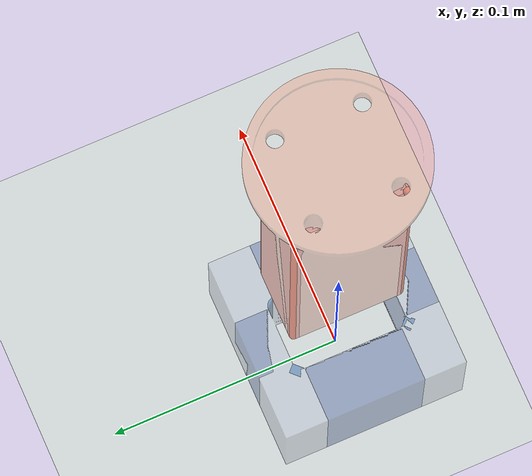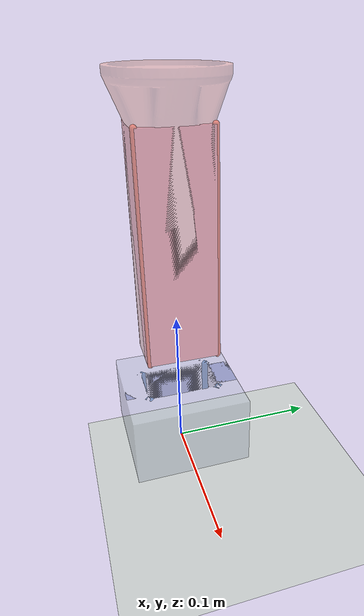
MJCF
<mujoco model="rect_peg_in_hole_mesh_proxy_rounded_peg_soft">

  <compiler angle="radian"
            meshdir="../urdf/meshes"/>

  <option timestep="0.005"
          solver="Newton"
          iterations="10"
          ls_iterations="50"
          gravity="0 0 0"
          cone="pyramidal"/>

  <custom>
    <numeric data="72" name="max_contact_points"/>
    <numeric data="72" name="max_geom_pairs"/>
  </custom>

  <visual>
    <global offwidth="1280" offheight="900"/>
    <headlight ambient="0.35 0.35 0.35" diffuse="0.65 0.65 0.65" specular="0.1 0.1 0.1"/>
  </visual>

  <asset>
    <mesh name="rectangular_peg_mesh" file="rectangular_peg.obj"/>
    <mesh name="rectangular_hole_mesh" file="rectangular_hole.obj"/>

    <texture name="checker" type="2d" builtin="checker"
             width="512" height="512"
             rgb1="0.92 0.92 0.88" rgb2="0.68 0.72 0.76"/>
    <material name="checker_mat" texture="checker" texrepeat="10 10" reflectance="0.15"/>
  </asset>

  <default>
    <geom condim="3"
          friction="1.0 0.005 0.0001"
          solref="0.03 1"
          solimp="0 0.9 0.01 0.5 2"/>
  </default>

  <worldbody>
    <light name="key_light" pos="0.35 -0.55 1.0" dir="-0.35 0.55 -1"/>
    <geom name="floor"
          type="plane"
          pos="0 0 -0.026"
          size="0.5 0.5 0.01"
          contype="0"
          conaffinity="0"
          material="checker_mat"/>

    <geom name="hole_visual"
          type="mesh"
          mesh="rectangular_hole_mesh"
          pos="0 0 0"
          contype="0"
          conaffinity="0"
          rgba="0.68 0.73 0.82 0.35"/>

    <geom name="hole_proxy_pos_x_collision"
          type="box"
          pos="0.0281 0 0.025"
          size="0.0119 0.0215 0.025"
          contype="1"
          conaffinity="1"
          rgba="0.14 0.25 0.55 0.35"/>
    <geom name="hole_proxy_neg_x_collision"
          type="box"
          pos="-0.0281 0 0.025"
          size="0.0119 0.0215 0.025"
          contype="1"
          conaffinity="1"
          rgba="0.14 0.25 0.55 0.35"/>
    <geom name="hole_proxy_pos_y_collision"
          type="box"
          pos="0 0.0326 0.025"
          size="0.0125 0.0074 0.025"
          contype="1"
          conaffinity="1"
          rgba="0.14 0.25 0.55 0.35"/>
    <geom name="hole_proxy_neg_y_collision"
          type="box"
          pos="0 -0.0326 0.025"
          size="0.0125 0.0074 0.025"
          contype="1"
          conaffinity="1"
          rgba="0.14 0.25 0.55 0.35"/>

    <geom name="hole_proxy_chamfer_pos_x_pos_y_collision"
          type="box"
          pos="0.015764 0.024764 0.025"
          euler="0 0 -0.7853981633974483"
          size="0.002616 0.002 0.025"
          contype="1"
          conaffinity="1"
          rgba="0.10 0.35 0.65 0.45"/>
    <geom name="hole_proxy_chamfer_neg_x_pos_y_collision"
          type="box"
          pos="-0.015764 0.024764 0.025"
          euler="0 0 0.7853981633974483"
          size="0.002616 0.002 0.025"
          contype="1"
          conaffinity="1"
          rgba="0.10 0.35 0.65 0.45"/>
    <geom name="hole_proxy_chamfer_pos_x_neg_y_collision"
          type="box"
          pos="0.015764 -0.024764 0.025"
          euler="0 0 -2.356194490192345"
          size="0.002616 0.002 0.025"
          contype="1"
          conaffinity="1"
          rgba="0.10 0.35 0.65 0.45"/>
    <geom name="hole_proxy_chamfer_neg_x_neg_y_collision"
          type="box"
          pos="-0.015764 -0.024764 0.025"
          euler="0 0 2.356194490192345"
          size="0.002616 0.002 0.025"
          contype="1"
          conaffinity="1"
          rgba="0.10 0.35 0.65 0.45"/>

    <body name="peg" pos="0.006 0 0.23" euler="0 0 1.5707963267948966">
      <joint name="insertion_slide" type="slide" axis="0 0 1"/>

      <geom name="peg_visual"
            type="mesh"
            mesh="rectangular_peg_mesh"
            euler="1.5707963267948966 0 0"
            density="0"
            contype="0"
            conaffinity="0"
            rgba="0.95 0.58 0.44 0.35"/>

      <geom name="peg_proxy_core_x_collision"
            type="box"
            pos="0 0 -0.075"
            size="0.023 0.016 0.075"
            mass="0.49468"
            contype="1"
            conaffinity="1"
            rgba="0.85 0.18 0.12 0.35"/>
      <geom name="peg_proxy_core_y_collision"
            type="box"
            pos="0 0 -0.075"
            size="0.025 0.014 0.075"
            density="0"
            contype="1"
            conaffinity="1"
            rgba="0.85 0.18 0.12 0.35"/>

      <geom name="peg_proxy_capsule_pos_x_pos_y_collision"
            type="capsule"
            fromto="0.023 0.014 -0.15 0.023 0.014 0"
            size="0.002"
            density="0"
            contype="1"
            conaffinity="1"
            rgba="0.95 0.30 0.15 0.55"/>
      <geom name="peg_proxy_capsule_neg_x_pos_y_collision"
            type="capsule"
            fromto="-0.023 0.014 -0.15 -0.023 0.014 0"
            size="0.002"
            density="0"
            contype="1"
            conaffinity="1"
            rgba="0.95 0.30 0.15 0.55"/>
      <geom name="peg_proxy_capsule_pos_x_neg_y_collision"
            type="capsule"
            fromto="0.023 -0.014 -0.15 0.023 -0.014 0"
            size="0.002"
            density="0"
            contype="1"
            conaffinity="1"
            rgba="0.95 0.30 0.15 0.55"/>
      <geom name="peg_proxy_capsule_neg_x_neg_y_collision"
            type="capsule"
            fromto="-0.023 -0.014 -0.15 -0.023 -0.014 0"
            size="0.002"
            density="0"
            contype="1"
            conaffinity="1"
            rgba="0.95 0.30 0.15 0.55"/>
    </body>
  </worldbody>

  <actuator>
    <velocity name="insertion_velocity_servo"
              joint="insertion_slide"
              kv="20"
              ctrllimited="true"
              ctrlrange="-1 1"/>
  </actuator>
</mujoco>
